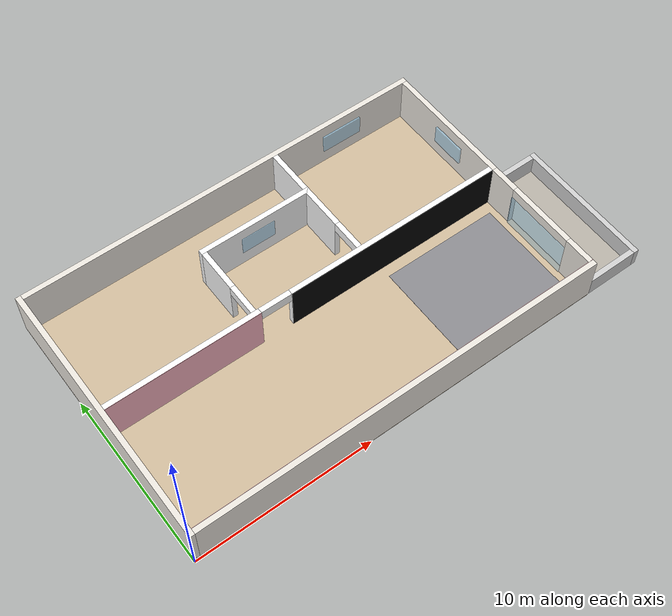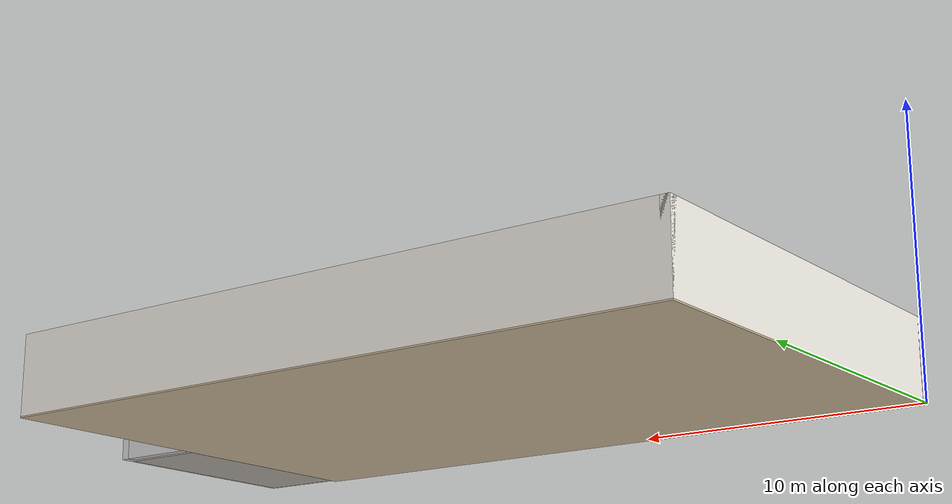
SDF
<?xml version="1.0" ?>
<sdf version="1.7">
  <model name="building">
    <static>true</static>

    <!-- ─────────────────────────────────────────
         FLOOR SLABS  (top face z=0)
         ───────────────────────────────────────── -->
    <link name="floor_main">
      <pose>12.00 7.69 -0.025 0 0 0</pose>
      <collision name="collision">
        <geometry><box><size>24.00 15.38 0.05</size></box></geometry>
      </collision>
      <visual name="visual">
        <geometry><box><size>24.00 15.38 0.05</size></box></geometry>
        <material>
          <ambient>0.82 0.74 0.62 1</ambient>
          <diffuse>0.82 0.74 0.62 1</diffuse>
          <specular>0.04 0.04 0.04 1</specular>
        </material>
      </visual>
    </link>

    <link name="floor_balcony">
      <pose>25.47 4.01 -0.025 0 0 0</pose>
      <collision name="collision">
        <geometry><box><size>2.94 7.42 0.05</size></box></geometry>
      </collision>
      <visual name="visual">
        <geometry><box><size>2.94 7.42 0.05</size></box></geometry>
        <material>
          <ambient>0.72 0.70 0.66 1</ambient>
          <diffuse>0.72 0.70 0.66 1</diffuse>
          <specular>0.04 0.04 0.04 1</specular>
        </material>
      </visual>
    </link>

    <!-- ─────────────────────────────────────────
         EXTERIOR WALLS  (warm off-white)
         ───────────────────────────────────────── -->
    <link name="wall_south">
      <pose>12.00 0.15 1.35 0 0 0</pose>
      <collision name="collision">
        <geometry><box><size>24.00 0.30 2.70</size></box></geometry>
      </collision>
      <visual name="visual">
        <geometry><box><size>24.00 0.30 2.70</size></box></geometry>
        <material>
          <ambient>0.93 0.91 0.88 1</ambient>
          <diffuse>0.93 0.91 0.88 1</diffuse>
          <specular>0.05 0.05 0.05 1</specular>
        </material>
      </visual>
    </link>

    <link name="wall_north">
      <pose>12.00 15.23 1.35 0 0 0</pose>
      <collision name="collision">
        <geometry><box><size>24.00 0.30 2.70</size></box></geometry>
      </collision>
      <visual name="visual">
        <geometry><box><size>24.00 0.30 2.70</size></box></geometry>
        <material>
          <ambient>0.93 0.91 0.88 1</ambient>
          <diffuse>0.93 0.91 0.88 1</diffuse>
          <specular>0.05 0.05 0.05 1</specular>
        </material>
      </visual>
    </link>

    <link name="wall_west">
      <pose>0.15 7.69 1.35 0 0 0</pose>
      <collision name="collision">
        <geometry><box><size>0.30 15.38 2.70</size></box></geometry>
      </collision>
      <visual name="visual">
        <geometry><box><size>0.30 15.38 2.70</size></box></geometry>
        <material>
          <ambient>0.93 0.91 0.88 1</ambient>
          <diffuse>0.93 0.91 0.88 1</diffuse>
          <specular>0.05 0.05 0.05 1</specular>
        </material>
      </visual>
    </link>

    <!-- East wall — bedroom side only (y=7.86..15.08).
         South side replaced by sliding-door flanks. -->
    <link name="wall_east_bedroom">
      <pose>23.85 11.32 1.35 0 0 0</pose>
      <collision name="collision">
        <geometry><box><size>0.30 7.52 2.70</size></box></geometry>
      </collision>
      <visual name="visual">
        <geometry><box><size>0.30 7.52 2.70</size></box></geometry>
        <material>
          <ambient>0.93 0.91 0.88 1</ambient>
          <diffuse>0.93 0.91 0.88 1</diffuse>
          <specular>0.05 0.05 0.05 1</specular>
        </material>
      </visual>
    </link>

    <!-- ─────────────────────────────────────────
         SLIDING DOOR — living room ↔ balcony
         Door opening: y=1.93..5.93 (4.00 m wide)
         ───────────────────────────────────────── -->
    <link name="wall_door_flank_south">
      <!-- y=0.30..1.93, len=1.63, centre y=1.115 -->
      <pose>23.85 1.115 1.35 0 0 0</pose>
      <collision name="collision">
        <geometry><box><size>0.30 1.63 2.70</size></box></geometry>
      </collision>
      <visual name="visual">
        <geometry><box><size>0.30 1.63 2.70</size></box></geometry>
        <material>
          <ambient>0.93 0.91 0.88 1</ambient>
          <diffuse>0.93 0.91 0.88 1</diffuse>
          <specular>0.05 0.05 0.05 1</specular>
        </material>
      </visual>
    </link>

    <link name="wall_door_flank_north">
      <!-- y=5.93..7.56, len=1.63, centre y=6.745 -->
      <pose>23.85 6.745 1.35 0 0 0</pose>
      <collision name="collision">
        <geometry><box><size>0.30 1.63 2.70</size></box></geometry>
      </collision>
      <visual name="visual">
        <geometry><box><size>0.30 1.63 2.70</size></box></geometry>
        <material>
          <ambient>0.93 0.91 0.88 1</ambient>
          <diffuse>0.93 0.91 0.88 1</diffuse>
          <specular>0.05 0.05 0.05 1</specular>
        </material>
      </visual>
    </link>

    <link name="wall_door_transom">
      <!-- z=2.10..2.70, centre z=2.40 -->
      <pose>23.85 3.93 2.40 0 0 0</pose>
      <collision name="collision">
        <geometry><box><size>0.30 4.00 0.60</size></box></geometry>
      </collision>
      <visual name="visual">
        <geometry><box><size>0.30 4.00 0.60</size></box></geometry>
        <material>
          <ambient>0.93 0.91 0.88 1</ambient>
          <diffuse>0.93 0.91 0.88 1</diffuse>
          <specular>0.05 0.05 0.05 1</specular>
        </material>
      </visual>
    </link>

    <link name="door_balcony_glass">
      <pose>23.68 3.93 1.05 0 0 0</pose>
      <visual name="visual">
        <geometry><box><size>0.04 4.00 2.10</size></box></geometry>
        <material>
          <ambient>0.55 0.80 0.95 1</ambient>
          <diffuse>0.60 0.85 1.00 1</diffuse>
          <specular>0.90 0.95 1.00 1</specular>
        </material>
        <transparency>0.55</transparency>
      </visual>
    </link>

    <!-- ─────────────────────────────────────────
         BALCONY RAILINGS
         ───────────────────────────────────────── -->
    <link name="wall_balcony_south">
      <pose>25.47 0.15 0.55 0 0 0</pose>
      <collision name="collision">
        <geometry><box><size>2.94 0.30 1.10</size></box></geometry>
      </collision>
      <visual name="visual">
        <geometry><box><size>2.94 0.30 1.10</size></box></geometry>
        <material>
          <ambient>0.82 0.82 0.82 1</ambient>
          <diffuse>0.82 0.82 0.82 1</diffuse>
          <specular>0.20 0.20 0.20 1</specular>
        </material>
      </visual>
    </link>

    <link name="wall_balcony_east">
      <pose>27.09 4.01 0.55 0 0 0</pose>
      <collision name="collision">
        <geometry><box><size>0.30 8.02 1.10</size></box></geometry>
      </collision>
      <visual name="visual">
        <geometry><box><size>0.30 8.02 1.10</size></box></geometry>
        <material>
          <ambient>0.82 0.82 0.82 1</ambient>
          <diffuse>0.82 0.82 0.82 1</diffuse>
          <specular>0.20 0.20 0.20 1</specular>
        </material>
      </visual>
    </link>

    <link name="wall_balcony_north">
      <pose>25.47 7.87 0.55 0 0 0</pose>
      <collision name="collision">
        <geometry><box><size>2.94 0.30 1.10</size></box></geometry>
      </collision>
      <visual name="visual">
        <geometry><box><size>2.94 0.30 1.10</size></box></geometry>
        <material>
          <ambient>0.82 0.82 0.82 1</ambient>
          <diffuse>0.82 0.82 0.82 1</diffuse>
          <specular>0.20 0.20 0.20 1</specular>
        </material>
      </visual>
    </link>

    <!-- West segment: x=0.30..9.10, len=8.80, centre x=4.70 -->
    <link name="wall_mid_west">
      <pose>4.70 7.71 1.35 0 0 0</pose>
      <collision name="collision">
        <geometry><box><size>8.80 0.30 2.70</size></box></geometry>
      </collision>
      <visual name="visual">
        <geometry><box><size>8.80 0.30 2.70</size></box></geometry>
        <material>
          <ambient>0.98 0.98 0.98 1</ambient>
          <diffuse>0.98 0.98 0.98 1</diffuse>
          <specular>0.06 0.06 0.06 1</specular>
        </material>
      </visual>
    </link>

    <!-- East segment: x=10.90..23.70, len=12.80, centre x=17.30 -->
    <link name="wall_mid_east">
      <pose>17.30 7.71 1.35 0 0 0</pose>
      <collision name="collision">
        <geometry><box><size>12.80 0.30 2.70</size></box></geometry>
      </collision>
      <visual name="visual">
        <geometry><box><size>12.80 0.30 2.70</size></box></geometry>
        <material>
          <ambient>0.98 0.98 0.98 1</ambient>
          <diffuse>0.98 0.98 0.98 1</diffuse>
          <specular>0.06 0.06 0.06 1</specular>
        </material>
      </visual>
    </link>

    <!-- White accent — kitchen/living interior face of wall_south -->
    <link name="wall_south_north_face">
      <pose>12.00 0.31 1.35 0 0 0</pose>
      <visual name="visual">
        <geometry><box><size>24.00 0.02 2.70</size></box></geometry>
        <material>
          <ambient>0.98 0.71 0.76 1</ambient>
          <diffuse>0.98 0.71 0.76 1</diffuse>
          <specular>0.05 0.05 0.05 1</specular>
        </material>
      </visual>
    </link>

    <!-- White accent — kitchen face of wall_mid_west (south side) -->
    <link name="wall_mid_west_south_face">
      <pose>4.70 7.55 1.35 0 0 0</pose>
      <visual name="visual">
        <geometry><box><size>8.80 0.02 2.70</size></box></geometry>
        <material>
          <ambient>0.98 0.71 0.76 1</ambient>
          <diffuse>0.98 0.71 0.76 1</diffuse>
          <specular>0.05 0.05 0.05 1</specular>
        </material>
      </visual>
    </link>

    <!-- Black accent — living-room face of wall_mid_east -->
    <link name="wall_mid_east_south_face">
      <pose>17.30 7.55 1.35 0 0 0</pose>
      <visual name="visual">
        <geometry><box><size>12.80 0.02 2.70</size></box></geometry>
        <material>
          <ambient>0.02 0.02 0.02 1</ambient>
          <diffuse>0.02 0.02 0.02 1</diffuse>
          <specular>0.05 0.05 0.05 1</specular>
        </material>
      </visual>
    </link>

    <!-- Transom above mid-wall door -->
    <link name="wall_mid_door_transom">
      <pose>10.00 7.71 2.40 0 0 0</pose>
      <collision name="collision">
        <geometry><box><size>1.80 0.30 0.60</size></box></geometry>
      </collision>
      <visual name="visual">
        <geometry><box><size>1.80 0.30 0.60</size></box></geometry>
        <material>
          <ambient>0.98 0.98 0.98 1</ambient>
          <diffuse>0.98 0.98 0.98 1</diffuse>
          <specular>0.06 0.06 0.06 1</specular>
        </material>
      </visual>
    </link>

    <!-- Upper segment: y=9.66..12.12, len=2.46, centre y=10.89 -->
    <link name="wall_bed2_west_upper">
      <pose>8.83 10.89 1.35 0 0 0</pose>
      <collision name="collision">
        <geometry><box><size>0.30 2.46 2.70</size></box></geometry>
      </collision>
      <visual name="visual">
        <geometry><box><size>0.30 2.46 2.70</size></box></geometry>
        <material>
          <ambient>0.98 0.98 0.98 1</ambient>
          <diffuse>0.98 0.98 0.98 1</diffuse>
          <specular>0.06 0.06 0.06 1</specular>
        </material>
      </visual>
    </link>

    <!-- Transom above bedroom-2 door: y=7.86..9.66, z=2.10..2.70 -->
    <link name="wall_bed2_door_transom">
      <pose>8.83 8.76 2.40 0 0 0</pose>
      <collision name="collision">
        <geometry><box><size>0.30 1.80 0.60</size></box></geometry>
      </collision>
      <visual name="visual">
        <geometry><box><size>0.30 1.80 0.60</size></box></geometry>
        <material>
          <ambient>0.98 0.98 0.98 1</ambient>
          <diffuse>0.98 0.98 0.98 1</diffuse>
          <specular>0.06 0.06 0.06 1</specular>
        </material>
      </visual>
    </link>

    <!-- Bedroom-2 north wall: closes room at y=12.12
         x=8.98..15.08, len=6.10, centre x=12.03       -->
    <link name="wall_bed2_north">
      <pose>12.03 12.27 1.35 0 0 0</pose>
      <collision name="collision">
        <geometry><box><size>6.70 0.30 2.70</size></box></geometry>
      </collision>
      <visual name="visual">
        <geometry><box><size>6.70 0.30 2.70</size></box></geometry>
        <material>
          <ambient>0.98 0.98 0.98 1</ambient>
          <diffuse>0.98 0.98 0.98 1</diffuse>
          <specular>0.06 0.06 0.06 1</specular>
        </material>
      </visual>
    </link>

    <!-- Upper segment: y=9.66..15.08, len=5.42, centre y=12.37 -->
    <link name="wall_bed1_west_upper">
      <pose>15.23 12.37 1.35 0 0 0</pose>
      <collision name="collision">
        <geometry><box><size>0.30 5.42 2.70</size></box></geometry>
      </collision>
      <visual name="visual">
        <geometry><box><size>0.30 5.42 2.70</size></box></geometry>
        <material>
          <ambient>0.98 0.98 0.98 1</ambient>
          <diffuse>0.98 0.98 0.98 1</diffuse>
          <specular>0.06 0.06 0.06 1</specular>
        </material>
      </visual>
    </link>

    <!-- Transom above bedroom-1 door -->
    <link name="wall_bed1_door_transom">
      <pose>15.23 8.76 2.40 0 0 0</pose>
      <collision name="collision">
        <geometry><box><size>0.30 1.80 0.60</size></box></geometry>
      </collision>
      <visual name="visual">
        <geometry><box><size>0.30 1.80 0.60</size></box></geometry>
        <material>
          <ambient>0.98 0.98 0.98 1</ambient>
          <diffuse>0.98 0.98 0.98 1</diffuse>
          <specular>0.06 0.06 0.06 1</specular>
        </material>
      </visual>
    </link>

    <!-- Bedroom 1 north window -->
    <link name="window_bed1_north">
      <pose>19.54 15.04 1.45 0 0 0</pose>
      <visual name="visual">
        <geometry><box><size>2.40 0.12 1.10</size></box></geometry>
        <material>
          <ambient>0.55 0.80 0.95 1</ambient>
          <diffuse>0.60 0.85 1.00 1</diffuse>
          <specular>0.90 0.95 1.00 1</specular>
        </material>
        <transparency>0.50</transparency>
      </visual>
    </link>

    <!-- Bedroom 1 east window -->
    <link name="window_bed1_east">
      <pose>23.66 11.00 1.45 0 0 0</pose>
      <visual name="visual">
        <geometry><box><size>0.12 2.00 1.10</size></box></geometry>
        <material>
          <ambient>0.55 0.80 0.95 1</ambient>
          <diffuse>0.60 0.85 1.00 1</diffuse>
          <specular>0.90 0.95 1.00 1</specular>
        </material>
        <transparency>0.50</transparency>
      </visual>
    </link>

    <!-- Bedroom 2 north window -->
    <link name="window_bed2_north">
      <pose>12.03 12.14 1.45 0 0 0</pose>
      <visual name="visual">
        <geometry><box><size>2.00 0.12 1.10</size></box></geometry>
        <material>
          <ambient>0.55 0.80 0.95 1</ambient>
          <diffuse>0.60 0.85 1.00 1</diffuse>
          <specular>0.90 0.95 1.00 1</specular>
        </material>
        <transparency>0.50</transparency>
      </visual>
    </link>

    <!-- Living / kitchen south window -->
    <link name="window_living_south">
      <pose>19.91 0.34 1.45 0 0 0</pose>
      <visual name="visual">
        <geometry><box><size>4.40 0.12 1.10</size></box></geometry>
        <material>
          <ambient>0.55 0.80 0.95 1</ambient>
          <diffuse>0.60 0.85 1.00 1</diffuse>
          <specular>0.90 0.95 1.00 1</specular>
        </material>
        <transparency>0.50</transparency>
      </visual>
    </link>

    <!-- ─────────────────────────────────────────
         CARPET — living room
         6.80 × 6.00 m, centred, 6 mm thick
         ───────────────────────────────────────── -->
    <link name="carpet_living">
      <pose>19.91 3.93 0.003 0 0 0</pose>
      <collision name="collision">
        <geometry><box><size>6.80 6.00 0.006</size></box></geometry>
      </collision>
      <visual name="visual">
        <geometry><box><size>6.80 6.00 0.006</size></box></geometry>
        <material>
          <ambient>0.52 0.52 0.54 1</ambient>
          <diffuse>0.55 0.55 0.57 1</diffuse>
          <specular>0.02 0.02 0.02 1</specular>
        </material>
      </visual>
    </link>

  </model>
</sdf>
